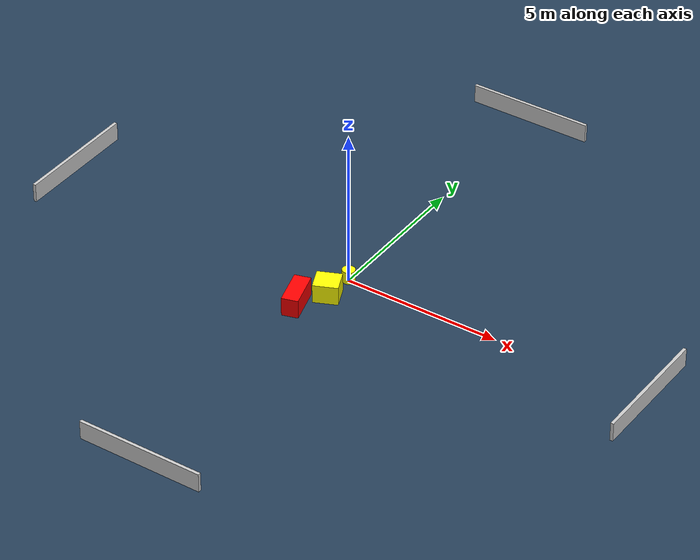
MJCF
<?xml version="1.0" ?>
<mujoco model="generated_environment">
  <option timestep="0.01" integrator="RK4" cone="elliptic"/>
  <default>
    <geom density="1"/>
  </default>
  <asset>
    <texture builtin="gradient" height="3072" name="skybox" rgb1="0.3 0.5 0.7" rgb2="0 0 0" type="skybox" width="512"/>
    <texture builtin="checker" height="300" name="groundplane" rgb1="0.2 0.3 0.4" rgb2="0.1 0.2 0.3" type="2d" width="300"/>
    <material name="groundplane" reflectance="0.2" texrepeat="5 5" texture="groundplane"/>
  </asset>
  <worldbody>
    <light dir="0 0 -1" directional="true" pos="0 0 1.5"/>
    <geom condim="3" friction="0.5 0.005 0.001" material="groundplane" name="floor" pos="0 0 0" size="0 0 0.05" type="plane"/>
    <body name="walls">
      <geom name="wall_1" condim="4" pos="-10.0 0.0 0.3" rgba="0.800000011920929 0.800000011920929 0.800000011920929 1.0" size="0.05 2.0 0.3" type="box"/>
      <geom name="wall_2" condim="4" pos="10.0 0.0 0.3" rgba="0.800000011920929 0.800000011920929 0.800000011920929 1.0" size="0.05 2.0 0.3" type="box"/>
      <geom name="wall_3" condim="4" pos="0.0 -10.0 0.3" rgba="0.800000011920929 0.800000011920929 0.800000011920929 1.0" size="2.0 0.05 0.3" type="box"/>
      <geom name="wall_4" condim="4" pos="0.0 10.0 0.3" rgba="0.800000011920929 0.800000011920929 0.800000011920929 1.0" size="2.0 0.05 0.3" type="box"/>
    </body>
    <body name="robot">
      <joint name="joint_x" type="slide" pos="0 0 0" axis="1 0 0"/>
      <joint name="joint_y" type="slide" pos="0 0 0" axis="0 1 0"/>
      <geom name="robot" type="cylinder" pos="0.0 0.0 0.2" size="0.2 0.2 0.0" mass="5.0" friction="1.0 0.005 0.0001" condim="4" rgba="1.0 1.0 0.0 1.0"/>
    </body>
    <body name="obstacle_1_movable">
      <geom name="obstacle_1_movable" condim="4" pos="-0.07242899445043977 -0.9759698030789223 0.3" euler="0 0 23.703183418837845" friction="0.0 0.005 0.001" rgba="1.0 1.0 0.0 1.0" size="0.3820400387224786 0.3578451620668144 0.3" type="box" mass="0.1"/>
      <joint type="free"/>
    </body>
    <body name="obstacle_2_static">
      <geom name="obstacle_2_static" condim="4" pos="-0.5874630627703245 -1.8043787899063641 0.3" euler="0 0 106.3373309492444" friction="0.0 0.005 0.001" rgba="1.0 0.0 0.0 1.0" size="0.5945814357624839 0.25597957010787137 0.3" type="box"/>
    </body>
  </worldbody>
  <actuator>
    <motor name="actuator_x" joint="joint_x" gear="1" ctrlrange="-1 1"/>
    <motor name="actuator_y" joint="joint_y" gear="1" ctrlrange="-1 1"/>
  </actuator>
</mujoco>
